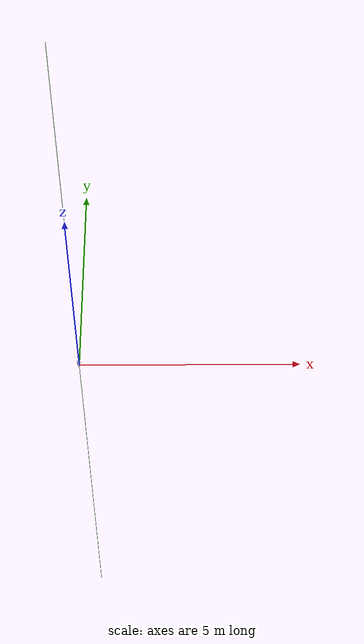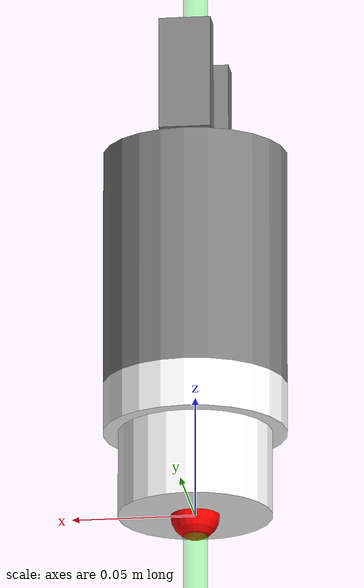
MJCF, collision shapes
<mujoco model="robotiq_hande">
  <!-- hand-e URDF from https://github.com/cambel/robotiq -->
  <!-- then yuni loaded it in mujoco to convert to xml and used online tools to convert dae to stl -->
  <!-- then a bunch of manual copy and pasting from other gripper examples -->

  <asset>
    <mesh name="hand-e" file="meshes/robotiq_hand_e_gripper/hand-e.stl" />
    <mesh name="finger_1" file="meshes/robotiq_hand_e_gripper/finger_1.stl" />
    <mesh name="finger_2" file="meshes/robotiq_hand_e_gripper/finger_2.stl" />
  </asset>

  <actuator>
    <position ctrllimited="true" ctrlrange="0 0.025" joint="finger_joint1" kp="1000" name="gripper_finger_joint1" forcelimited="true" forcerange="-20 20" />
    <position ctrllimited="true" ctrlrange="0 0.025" joint="finger_joint2" kp="1000" name="gripper_finger_joint2" forcelimited="true" forcerange="-20 20" />
  </actuator>

  <worldbody>
    <body name="gripper_base" pos="0 0 0">
      <geom type="cylinder" pos="0 0 0.0175" size="0.0315 0.0175" group="1" name="gripper_base_visual" rgba="1 1 1 1" />
      <geom type="cylinder" pos="0 0 0.045" size="0.0375 0.01" group="1" rgba="1 1 1 1" />
      <geom type="cylinder" pos="0 0 0.0175" size="0.0315 0.0175" group="0" name="gripper_base_collision"/>
      <geom type="cylinder" pos="0 0 0.045" size="0.0375 0.01" group="0" rgba="1 1 1 1" />
      <site name="ft_frame" pos="0 0 0" size="0.01 0.01 0.01" rgba="1 0 0 1" type="sphere" group="1" />
      <!-- This site was added for visualization. -->
      <body name="eef" pos="0 0 0" quat="0.707105 0 0 -0.707105">
        <!-- Site for IK solver (matches soft gripper) -->
        <site name="gripper_eef_site" pos="0 0 0" />
        <site name="grip_site" pos="0 0 0" size="0.01 0.01 0.01" rgba="1 0 0 0.5" type="sphere" group="1" />
        <site name="ee_x" pos="0.1 0 0" size="0.005 .1" quat="0.707105  0 0.707108 0 " rgba="1 0 0 0" type="cylinder" group="1" />
        <site name="ee_y" pos="0 0.1 0" size="0.005 .1" quat="0.707105 0.707108 0 0" rgba="0 1 0 0" type="cylinder" group="1" />
        <site name="ee_z" pos="0 0 0.1" size="0.005 .1" quat="1 0 0 0" rgba="0 0 1 0" type="cylinder" group="1" />
        <!-- This site was added for visualization. -->
        <site name="grip_site_cylinder" pos="0 0 0" size="0.005 10" rgba="0 1 0 0.3" type="cylinder" group="1" />
        <!-- Peg wrapper for rigid wrist (added for SoftPegInHole env compatibility) -->
        <body name="peg_wrapper">
          <site name="peg_ft_frame" pos="0.0 0.0 0.075" />
          <inertial pos="0.0 0.0 0.0375" mass="0.03" diaginertia="1e-5 1e-5 1e-5" />
          <!-- Peg bodies will be added dynamically -->
        </body>
      </body>
      <body name="right_gripper" pos="0 0 0.055" quat="0.707107 0 0 -0.707107">
        <!-- inertia manually copied over from URDF, not autogenerated via mujoco -->
        <inertial pos="0 0 0.04607" mass="0.86387" diaginertia="1017560E-9 1028041E-9 489810E-9" />
        <geom type="mesh" contype="0" conaffinity="0" group="1" mesh="hand-e" name="hand_visual" rgba="0.1 0.1 0.1 1" />
        <geom type="cylinder" pos="0 0 0.049" size="0.0375 0.049" group="0" name="hand_collision" />
        <body name="leftfinger" pos="0 0 0.099">
          <inertial pos="0.02262 -0.00759 0.00738" quat="0.871952 0.0369732 -0.211073 0.440205" mass="0.03804" diaginertia="1.22763e-05 1.22763e-05 1.22763e-05" />
          <joint name="finger_joint1" pos="0 0 0" axis="-1 0 0" type="slide" limited="true" range="0 0.025" damping="100" armature="1.0" frictionloss="1.0" />
          <geom type="mesh" contype="0" conaffinity="0" group="1" mesh="finger_1" name="finger1_visual" rgba="1 1 1 1" />
          <geom type="box" pos="0.030677 0.0 0.02325" size="0.0054 0.0105 0.02325" group="0" conaffinity="1" contype="0" solref="0.02 1" friction="1 0.005 0.0001" condim="4" name="finger1_collision" />
        </body>
        <body name="rightfinger" pos="0 0 0.099">
          <inertial pos="-0.02262 0.00759 0.00738" quat="0.871952 -0.0369732 0.211073 0.440205" mass="0.03804" diaginertia="1.22763e-05 1.22763e-05 1.22763e-05" />
          <joint name="finger_joint2" pos="0 0 0" axis="1 0 0" type="slide" limited="true" range="0 0.025" damping="100" armature="1.0" frictionloss="1.0" />
          <geom type="mesh" contype="0" conaffinity="0" group="1" mesh="finger_2" name="finger2_visual" rgba="1 1 1 1" />
          <geom type="box" pos="-0.030677 0.0 0.02325" size="0.0054 0.0105 0.02325" group="0" conaffinity="1" contype="0" solref="0.02 1" friction="1 0.005 0.0001" condim="4" name="finger2_collision" />
        </body>
      </body>
    </body>
  </worldbody>

  <sensor>
    <force name="force_ee" site="ft_frame" />
    <torque name="torque_ee" site="ft_frame" />
  </sensor>

</mujoco>
